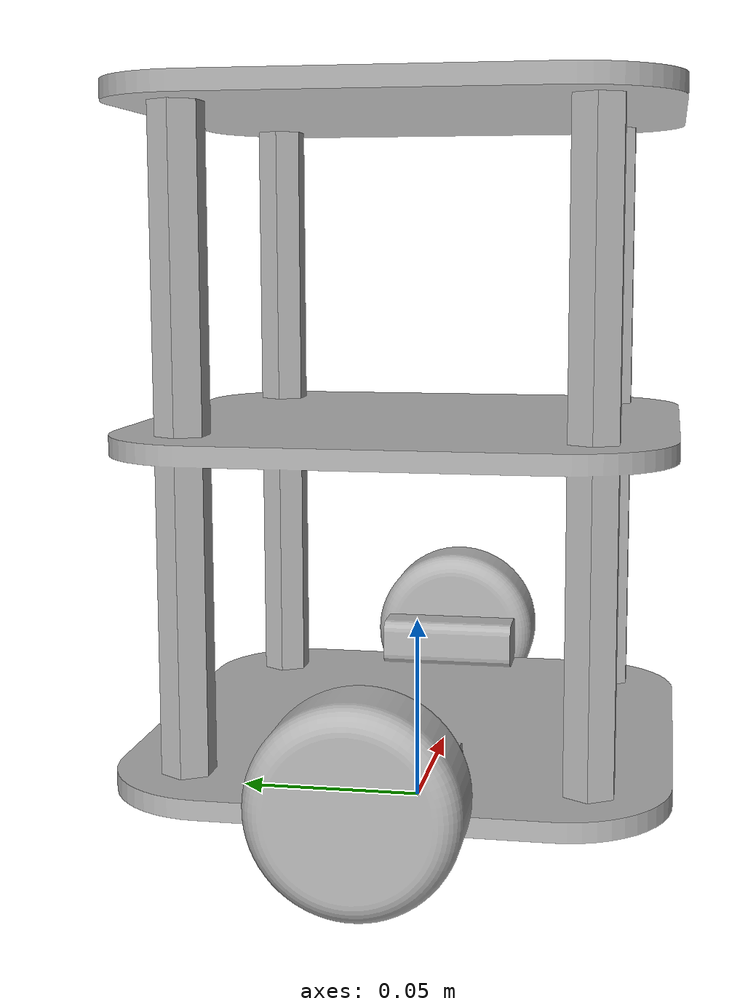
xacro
<?xml version="1.0" ?>
<robot name="model5" xmlns:xacro="http://www.ros.org/wiki/xacro">

<xacro:include filename="$(find model5_description)/urdf/materials.xacro" />
<xacro:include filename="$(find model5_description)/urdf/model5.trans" />
<xacro:include filename="$(find model5_description)/urdf/model5.gazebo" />
<link name="base_link">
  <inertial>
    <origin rpy="0 0 0" xyz="0 0 0.1009046148047008"/>
    <mass value="2.993362458147853"/>
    <inertia ixx="0.018002" ixy="-0.0" ixz="0.0" iyy="0.018465" iyz="-0.0" izz="0.010619"/>
  </inertial>
  <visual>
    <origin rpy="0 0 0" xyz="0 0 0"/>
    <geometry>
      <mesh filename="package://model5_description/meshes/base_link.stl" scale="0.001 0.001 0.001"/>
    </geometry>
    <material name="silver"/>
  </visual>
  <collision>
    <origin rpy="0 0 0" xyz="0 0 0"/>
    <geometry>
      <mesh filename="package://model5_description/meshes/base_link.stl" scale="0.001 0.001 0.001"/>
    </geometry>
  </collision>
</link>

<link name="right_wheel_1">
  <inertial>
    <origin rpy="0 0 0" xyz="-0.012499999999999997 0 0"/>
    <mass value="0.36730470107572427"/>
    <inertia ixx="0.00011" ixy="0.0" ixz="0.0" iyy="7.3e-05" iyz="0.0" izz="7.3e-05"/>
  </inertial>
  <visual>
    <origin rpy="0 0 0" xyz="0.07 -0.0 -0.02825"/>
    <geometry>
      <mesh filename="package://model5_description/meshes/right_wheel_1.stl" scale="0.001 0.001 0.001"/>
    </geometry>
    <material name="silver"/>
  </visual>
  <collision>
    <origin rpy="0 0 0" xyz="0.07 -0.0 -0.02825"/>
    <geometry>
      <mesh filename="package://model5_description/meshes/right_wheel_1.stl" scale="0.001 0.001 0.001"/>
    </geometry>
  </collision>
</link>

<link name="left_wheel_1">
  <inertial>
    <origin rpy="0 0 0" xyz="0.012499999999999886 0 0"/>
    <mass value="0.3673047010757242"/>
    <inertia ixx="0.00011" ixy="-0.0" ixz="0.0" iyy="7.3e-05" iyz="-0.0" izz="7.3e-05"/>
  </inertial>
  <visual>
    <origin rpy="0 0 0" xyz="-0.07 -0.0 -0.02825"/>
    <geometry>
      <mesh filename="package://model5_description/meshes/left_wheel_1.stl" scale="0.001 0.001 0.001"/>
    </geometry>
    <material name="silver"/>
  </visual>
  <collision>
    <origin rpy="0 0 0" xyz="-0.07 -0.0 -0.02825"/>
    <geometry>
      <mesh filename="package://model5_description/meshes/left_wheel_1.stl" scale="0.001 0.001 0.001"/>
    </geometry>
  </collision>
</link>

<joint name="Rev4" type="continuous">
  <origin rpy="0 0 0" xyz="-0.07 0.0 0.02825"/>
  <parent link="base_link"/>
  <child link="right_wheel_1"/>
  <axis xyz="-1.0 0.0 0.0"/>
</joint>

<joint name="Rev5" type="continuous">
  <origin rpy="0 0 0" xyz="0.07 0.0 0.02825"/>
  <parent link="base_link"/>
  <child link="left_wheel_1"/>
  <axis xyz="1.0 0.0 0.0"/>
</joint>

<link name="imu_link">
    <inertial>
        <origin xyz="0 0 0" rpy="0 0 0"/>
        <mass value="0.01"/>
        <inertia ixx="0.1" ixy="-0.1" ixz="0.0" iyy="0.0" iyz="0.0" izz="0.0"/>
    </inertial>

    <visual>
        <origin xyz="0 0 0" rpy="0 0 0" />
        <geometry>
        <cylinder radius="0.005" length="0.005"/>
        </geometry>
        <material name="silver"/>
    </visual>

    <collision>
        <origin xyz="0 0 0" rpy="0 0 0"/>
        <geometry>
        <cylinder radius="0.005" length="0.05"/>
        </geometry>
    </collision>
  </link>

  <joint name="joint_sensor_laser" type="fixed">
    <origin xyz="0.01 0.01 0.192" rpy="0 0 0"/>
    <parent link="base_link"/>
    <child link="imu_link"/>
  </joint>

</robot>

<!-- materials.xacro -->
<robot name="model5" xmlns:xacro="http://www.ros.org/wiki/xacro" >

<material name="silver">
  <color rgba="0.700 0.700 0.700 1.000"/>
</material>

</robot>

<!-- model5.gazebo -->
<robot name="model5" xmlns:xacro="http://www.ros.org/wiki/xacro" >

<xacro:property name="body_color" value="Gazebo/Silver" />

<gazebo>
  <plugin filename="libgazebo_ros_control.so" name="control"/>
</gazebo>
<gazebo reference="base_link">
  <material>${body_color}</material>
  <mu1>0.2</mu1>
  <mu2>0.2</mu2>
  <selfCollide>true</selfCollide>
  <gravity>true</gravity>
</gazebo>

<gazebo reference="right_wheel_1">
  <material>${body_color}</material>
  <mu1>0.2</mu1>
  <mu2>0.2</mu2>
  <selfCollide>true</selfCollide>
</gazebo>

<gazebo reference="left_wheel_1">
  <material>${body_color}</material>
  <mu1>0.2</mu1>
  <mu2>0.2</mu2>
  <selfCollide>true</selfCollide>
</gazebo>

<gazebo reference="imu_link">
    <gravity>true</gravity>
    <sensor name="imu_sensor" type="imu">
      <always_on>true</always_on>
      <update_rate>100</update_rate>
      <visualize>true</visualize>
      <topic>__default_topic__</topic>
      <plugin filename="libgazebo_ros_imu_sensor.so" name="imu_plugin">
        <topicName>imu/data</topicName>
        <bodyName>imu_link</bodyName>
        <updateRateHZ>10.0</updateRateHZ>
        <gaussianNoise>0.0</gaussianNoise>
        <xyzOffset>0 0 0</xyzOffset>
        <rpyOffset>0 0 0</rpyOffset>
        <frameName>imu_link</frameName>
        <initialOrientationAsReference>false</initialOrientationAsReference>
      </plugin>
      <pose>0 0 0 0 0 0</pose>
    </sensor>
  </gazebo>

</robot>
